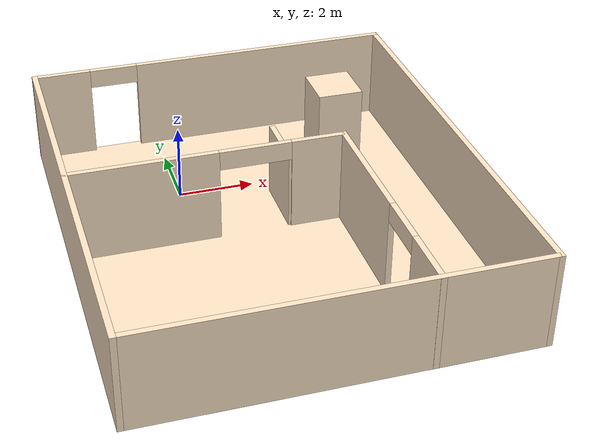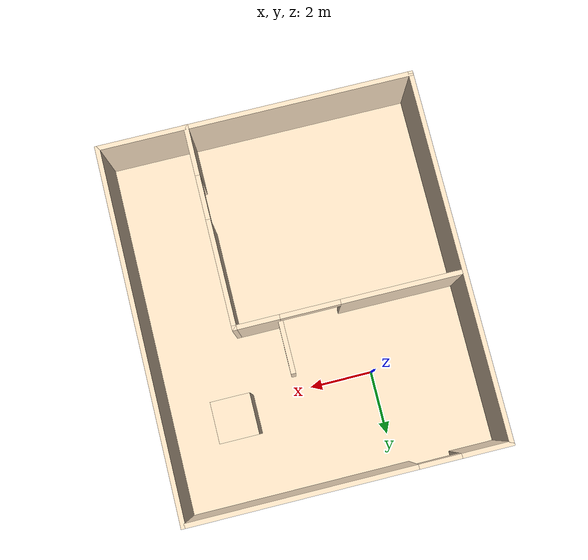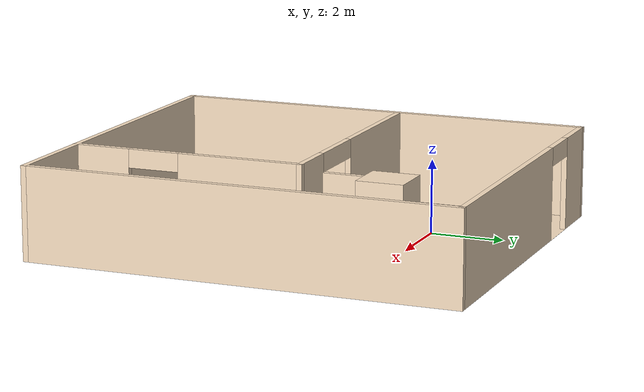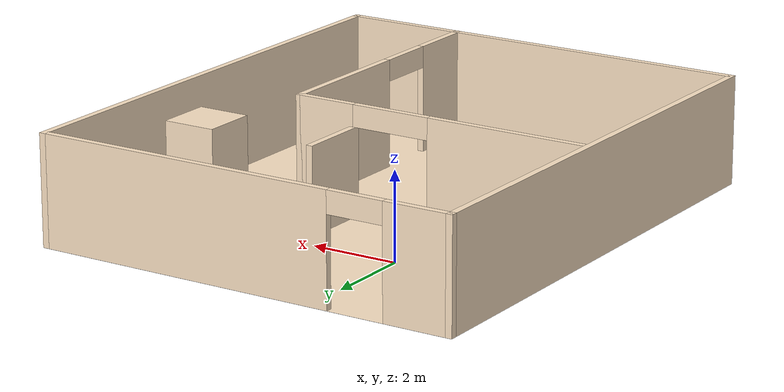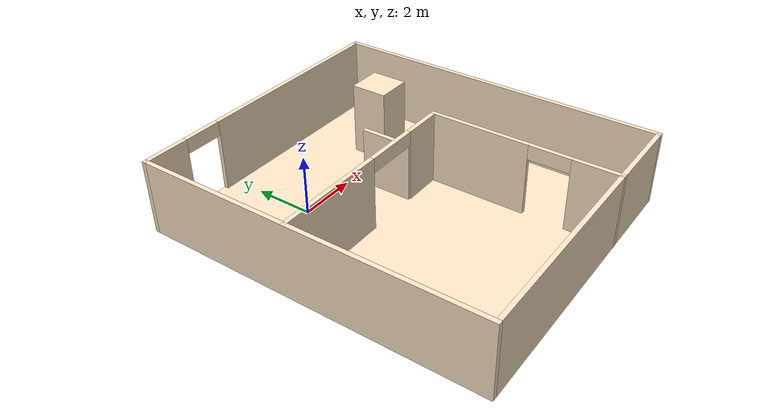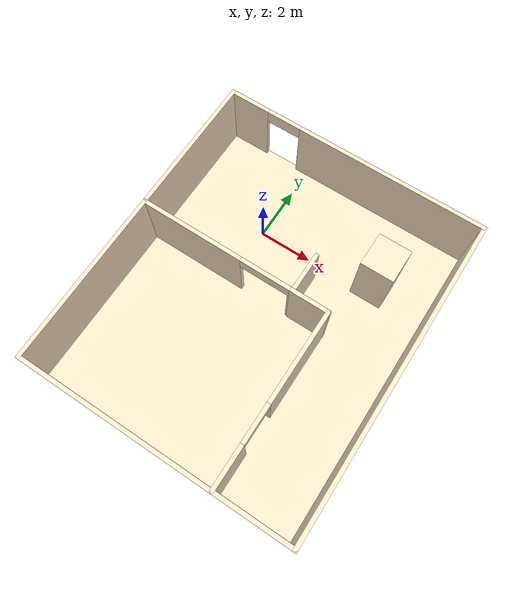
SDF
<?xml version='1.0'?>
<sdf version='1.7'>
  <model name='wall'>
    <pose>1.66496 -2.7198 0 0 -0 0</pose>
    <link name="floor">
      <collision name="floor_collision">
        <geometry>
          <box>
            <size>10. 11.75 0.001</size> <!-- 바닥 크기 -->
          </box>
        </geometry>
        <pose>0 0.002085 0.0 0 0 0</pose> <!-- 바닥 중심 위치 -->
      </collision>
      <visual name="floor_visual">
        <geometry>
          <box>
            <size>10 11.75 0.001</size> <!-- 바닥 크기 -->
          </box>
        </geometry>
        <material>
          <script>
            <uri>file://media/materials/scripts/gazebo.material</uri>
            <name>Gazebo/Grey</name> <!-- 벽과 같은 색상 -->
          </script>
          <ambient>1 0.901961 0.780392 1</ambient>
        </material>
        <pose>0 0.002085 0.0 0 0 0</pose> <!-- 바닥 중심 위치 -->
      </visual>
    </link>
    <link name='Wall_11'>
      <collision name='Wall_11_Collision'>
        <geometry>
          <box>
            <size>11.75 0.15 2.5</size>
          </box>
        </geometry>
        <pose>0 0 1.25 0 -0 0</pose>
      </collision>
      <visual name='Wall_11_Visual'>
        <pose>0 0 1.25 0 -0 0</pose>
        <geometry>
          <box>
            <size>11.75 0.15 2.5</size>
          </box>
        </geometry>
        <material>
          <script>
            <uri>file://media/materials/scripts/gazebo.material</uri>
            <name>Gazebo/Grey</name>
          </script>
          <ambient>1 0.901961 0.780392 1</ambient>
        </material>
        <meta>
          <layer>0</layer>
        </meta>
      </visual>
      <pose>-4.9383 0.002085 0 0 -0 -1.5708</pose>
    </link>
    <link name='Wall_13'>
      <collision name='Wall_13_Collision'>
        <geometry>
          <box>
            <size>11.75 0.15 2.5</size>
          </box>
        </geometry>
        <pose>0 0 1.25 0 -0 0</pose>
      </collision>
      <visual name='Wall_13_Visual'>
        <pose>0 0 1.25 0 -0 0</pose>
        <geometry>
          <box>
            <size>11.75 0.15 2.5</size>
          </box>
        </geometry>
        <material>
          <script>
            <uri>file://media/materials/scripts/gazebo.material</uri>
            <name>Gazebo/Grey</name>
          </script>
          <ambient>1 0.901961 0.780392 1</ambient>
        </material>
        <meta>
          <layer>0</layer>
        </meta>
      </visual>
      <pose>4.9383 0.002085 0 0 -0 -1.5708</pose>
    </link>
    <link name='Wall_17'>
      <collision name='Wall_17_Collision'>
        <geometry>
          <box>
            <size>10.0266 0.15 2.5</size>
          </box>
        </geometry>
        <pose>0 0 1.25 0 -0 0</pose>
      </collision>
      <visual name='Wall_17_Visual'>
        <pose>0 0 1.25 0 -0 0</pose>
        <geometry>
          <box>
            <size>10.0266 0.15 2.5</size>
          </box>
        </geometry>
        <material>
          <script>
            <uri>file://media/materials/scripts/gazebo.material</uri>
            <name>Gazebo/Grey</name>
          </script>
          <ambient>1 0.901961 0.780392 1</ambient>
        </material>
        <meta>
          <layer>0</layer>
        </meta>
      </visual>
      <pose>0 -5.79791 0 0 -0 0</pose>
    </link>
    <link name='Wall_25'>
      <pose>2.1642 -2.62709 0 0 -0 1.5708</pose>
      <visual name='Wall_25_Visual_0'>
        <pose>-2.43405 0 1.25 0 -0 0</pose>
        <geometry>
          <box>
            <size>1.63191 0.15 2.5</size>
          </box>
        </geometry>
        <material>
          <script>
            <uri>file://media/materials/scripts/gazebo.material</uri>
            <name>Gazebo/Grey</name>
          </script>
          <ambient>1 0.901961 0.780392 1</ambient>
        </material>
        <meta>
          <layer>0</layer>
        </meta>
      </visual>
      <collision name='Wall_25_Collision_0'>
        <geometry>
          <box>
            <size>1.63191 0.15 2.5</size>
          </box>
        </geometry>
        <pose>-2.43405 0 1.25 0 -0 0</pose>
      </collision>
      <visual name='Wall_25_Visual_1'>
        <pose>1.5188 0 1.25 0 -0 0</pose>
        <geometry>
          <box>
            <size>3.4624 0.15 2.5</size>
          </box>
        </geometry>
        <material>
          <script>
            <uri>file://media/materials/scripts/gazebo.material</uri>
            <name>Gazebo/Grey</name>
          </script>
          <ambient>1 0.901961 0.780392 1</ambient>
        </material>
        <meta>
          <layer>0</layer>
        </meta>
      </visual>
      <collision name='Wall_25_Collision_1'>
        <geometry>
          <box>
            <size>3.4624 0.15 2.5</size>
          </box>
        </geometry>
        <pose>1.5188 0 1.25 0 -0 0</pose>
      </collision>
      <visual name='Wall_25_Visual_2'>
        <pose>-0.915247 0 2.25 0 -0 0</pose>
        <geometry>
          <box>
            <size>1.40569 0.15 0.5</size>
          </box>
        </geometry>
        <material>
          <script>
            <uri>file://media/materials/scripts/gazebo.material</uri>
            <name>Gazebo/Grey</name>
          </script>
          <ambient>1 0.901961 0.780392 1</ambient>
        </material>
        <meta>
          <layer>0</layer>
        </meta>
      </visual>
      <collision name='Wall_25_Collision_2'>
        <geometry>
          <box>
            <size>1.40569 0.15 0.5</size>
          </box>
        </geometry>
        <pose>-0.915247 0 2.25 0 -0 0</pose>
      </collision>
    </link>
    <link name='Wall_26'>
      <pose>-1.3858 0.547915 0 0 -0 3.14159</pose>
      <visual name='Wall_26_Visual_0'>
        <pose>-2.88936 0 1.25 0 -0 0</pose>
        <geometry>
          <box>
            <size>1.47128 0.15 2.5</size>
          </box>
        </geometry>
        <material>
          <script>
            <uri>file://media/materials/scripts/gazebo.material</uri>
            <name>Gazebo/Grey</name>
          </script>
          <ambient>1 0.901961 0.780392 1</ambient>
        </material>
        <meta>
          <layer>0</layer>
        </meta>
      </visual>
      <collision name='Wall_26_Collision_0'>
        <geometry>
          <box>
            <size>1.47128 0.15 2.5</size>
          </box>
        </geometry>
        <pose>-2.88936 0 1.25 0 -0 0</pose>
      </collision>
      <visual name='Wall_26_Visual_1'>
        <pose>1.67111 0 1.25 0 -0 0</pose>
        <geometry>
          <box>
            <size>3.90779 0.15 2.5</size>
          </box>
        </geometry>
        <material>
          <script>
            <uri>file://media/materials/scripts/gazebo.material</uri>
            <name>Gazebo/Grey</name>
          </script>
          <ambient>1 0.901961 0.780392 1</ambient>
        </material>
        <meta>
          <layer>0</layer>
        </meta>
      </visual>
      <collision name='Wall_26_Collision_1'>
        <geometry>
          <box>
            <size>3.90779 0.15 2.5</size>
          </box>
        </geometry>
        <pose>1.67111 0 1.25 0 -0 0</pose>
      </collision>
      <visual name='Wall_26_Visual_2'>
        <pose>-1.21826 0 2.25 0 -0 0</pose>
        <geometry>
          <box>
            <size>1.87093 0.15 0.5</size>
          </box>
        </geometry>
        <material>
          <script>
            <uri>file://media/materials/scripts/gazebo.material</uri>
            <name>Gazebo/Grey</name>
          </script>
          <ambient>1 0.901961 0.780392 1</ambient>
        </material>
        <meta>
          <layer>0</layer>
        </meta>
      </visual>
      <collision name='Wall_26_Collision_2'>
        <geometry>
          <box>
            <size>1.87093 0.15 0.5</size>
          </box>
        </geometry>
        <pose>-1.21826 0 2.25 0 -0 0</pose>
      </collision>
    </link>
    <link name='Wall_28'>
      <collision name='Wall_28_Collision'>
        <geometry>
          <box>
            <size>1.75 0.15 2</size>
          </box>
        </geometry>
        <pose>0 0 1 0 -0 0</pose>
      </collision>
      <visual name='Wall_28_Visual'>
        <pose>0 0 1 0 -0 0</pose>
        <geometry>
          <box>
            <size>1.75 0.15 2</size>
          </box>
        </geometry>
        <material>
          <script>
            <uri>file://media/materials/scripts/gazebo.material</uri>
            <name>Gazebo/Grey</name>
          </script>
          <ambient>1 0.901961 0.780392 1</ambient>
        </material>
        <meta>
          <layer>0</layer>
        </meta>
      </visual>
      <pose>0.773042 1.3838 0 0 -0 1.5708</pose>
    </link>
    <link name='Wall_32'>
      <collision name='Wall_32_Collision'>
        <geometry>
          <box>
            <size>1.25 1.2 2.5</size>
          </box>
        </geometry>
        <pose>0 0 1.25 0 -0 0</pose>
      </collision>
      <visual name='Wall_32_Visual'>
        <pose>0 0 1.25 0 -0 0</pose>
        <geometry>
          <box>
            <size>1.25 1.2 2.5</size>
          </box>
        </geometry>
        <material>
          <script>
            <uri>file://media/materials/scripts/gazebo.material</uri>
            <name>Gazebo/Grey</name>
          </script>
          <ambient>1 0.901961 0.780392 1</ambient>
        </material>
        <meta>
          <layer>0</layer>
        </meta>
      </visual>
      <pose>2.76597 3.13644 0 0 -0 -1.5708</pose>
    </link>
    <link name='Wall_9'>
      <pose>0 5.80208 0 0 -0 0</pose>
      <visual name='Wall_9_Visual_0'>
        <pose>-4.22153 0 1.25 0 -0 0</pose>
        <geometry>
          <box>
            <size>1.58354 0.15 2.5</size>
          </box>
        </geometry>
        <material>
          <script>
            <uri>file://media/materials/scripts/gazebo.material</uri>
            <name>Gazebo/Grey</name>
          </script>
          <ambient>1 0.901961 0.780392 1</ambient>
        </material>
        <meta>
          <layer>0</layer>
        </meta>
      </visual>
      <collision name='Wall_9_Collision_0'>
        <geometry>
          <box>
            <size>1.58354 0.15 2.5</size>
          </box>
        </geometry>
        <pose>-4.22153 0 1.25 0 -0 0</pose>
      </collision>
      <visual name='Wall_9_Visual_1'>
        <pose>1.44405 0 1.25 0 -0 0</pose>
        <geometry>
          <box>
            <size>7.13851 0.15 2.5</size>
          </box>
        </geometry>
        <material>
          <script>
            <uri>file://media/materials/scripts/gazebo.material</uri>
            <name>Gazebo/Grey</name>
          </script>
          <ambient>1 0.901961 0.780392 1</ambient>
        </material>
        <meta>
          <layer>0</layer>
        </meta>
      </visual>
      <collision name='Wall_9_Collision_1'>
        <geometry>
          <box>
            <size>7.13851 0.15 2.5</size>
          </box>
        </geometry>
        <pose>1.44405 0 1.25 0 -0 0</pose>
      </collision>
      <visual name='Wall_9_Visual_2'>
        <pose>-2.77748 0 2.25 0 -0 0</pose>
        <geometry>
          <box>
            <size>1.30456 0.15 0.5</size>
          </box>
        </geometry>
        <material>
          <script>
            <uri>file://media/materials/scripts/gazebo.material</uri>
            <name>Gazebo/Grey</name>
          </script>
          <ambient>1 0.901961 0.780392 1</ambient>
        </material>
        <meta>
          <layer>0</layer>
        </meta>
      </visual>
      <collision name='Wall_9_Collision_2'>
        <geometry>
          <box>
            <size>1.30456 0.15 0.5</size>
          </box>
        </geometry>
        <pose>-2.77748 0 2.25 0 -0 0</pose>
      </collision>
    </link>
    <static>1</static>
  </model>
</sdf>
